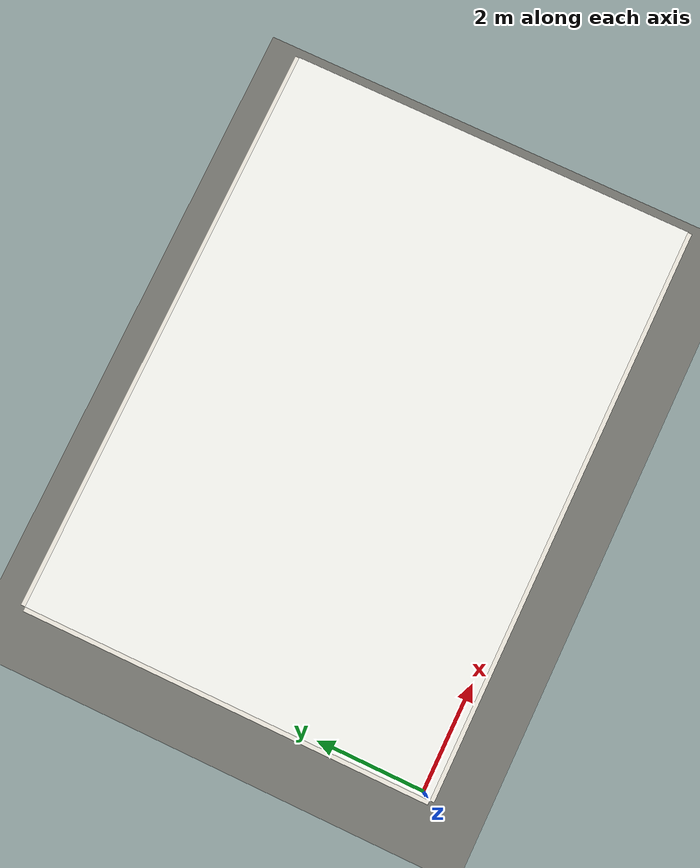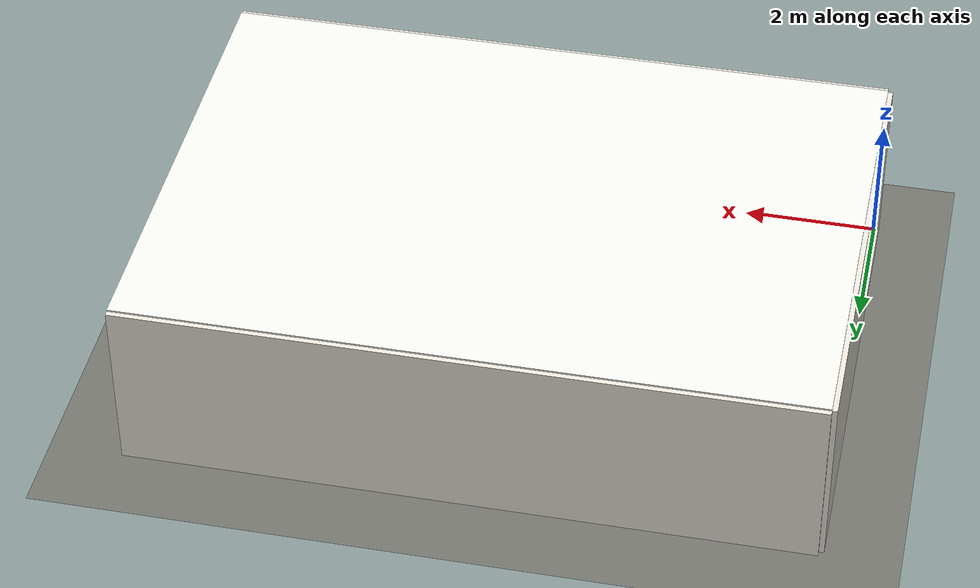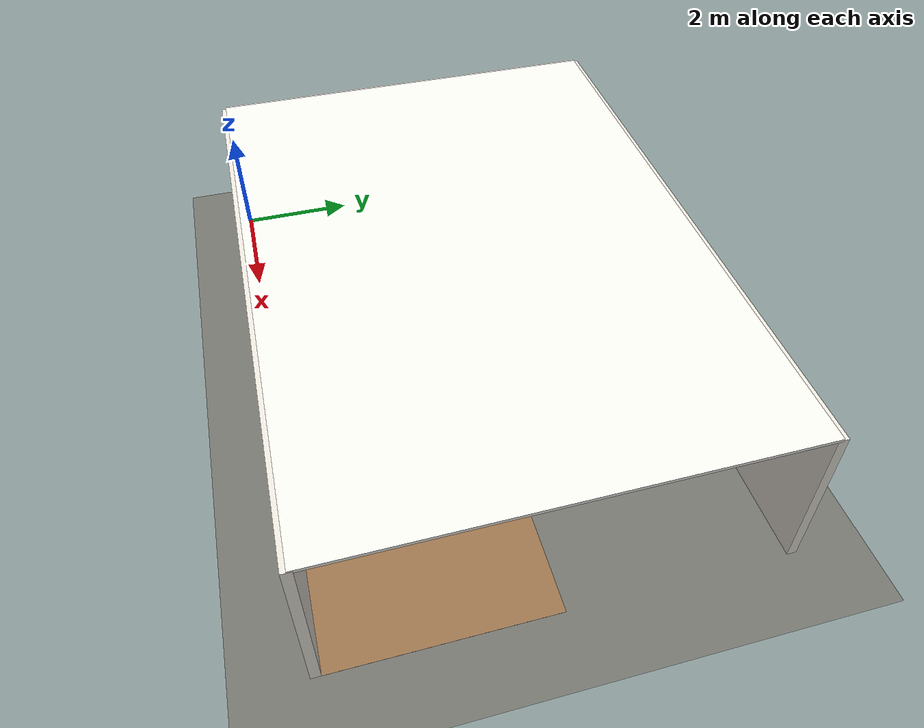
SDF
<?xml version="1.0"?>
<sdf version="1.9">
  <world name="apartment">

    <!--  PHYSICS                                                      -->
    <physics type="ode">
      <max_step_size>0.002</max_step_size>
      <real_time_factor>1.0</real_time_factor>
      <real_time_update_rate>500</real_time_update_rate>
    </physics>

    <!--  PLUGINS                                                      -->
    <plugin filename="gz-sim-physics-system"        name="gz::sim::systems::Physics"/>
    <plugin filename="gz-sim-scene-broadcaster-system" name="gz::sim::systems::SceneBroadcaster"/>
    <plugin filename="gz-sim-user-commands-system"  name="gz::sim::systems::UserCommands"/>
    <plugin filename="gz-sim-sensors-system"        name="gz::sim::systems::Sensors">
      <render_engine>ogre2</render_engine>
    </plugin>
    <plugin filename="gz-sim-imu-system"            name="gz::sim::systems::Imu"/>
    <plugin filename="gz-sim-altimeter-system"      name="gz::sim::systems::Altimeter"/>
    <plugin filename="gz-sim-contact-system"        name="gz::sim::systems::Contact"/>

    <!--  SCENE & LIGHTING                                             -->
    <scene>
      <ambient>0.45 0.45 0.45 1.0</ambient>
      <background>0.8 0.85 0.95 1.0</background>
      <shadows>true</shadows>
    </scene>

    <!-- Warm overhead light -->
    <light type="directional" name="sun_indirect">
      <pose>5 3.5 2.6 0 0 0</pose>
      <cast_shadows>true</cast_shadows>
      <diffuse>0.85 0.82 0.72 1</diffuse>
      <specular>0.2 0.2 0.2 1</specular>
      <attenuation>
        <range>20</range>
        <constant>0.3</constant>
        <linear>0.01</linear>
        <quadratic>0.002</quadratic>
      </attenuation>
      <direction>0.1 0.1 -1.0</direction>
    </light>

    <!-- Room lights -->
    <light type="point" name="living_room_light">
      <pose>7 1.75 2.4 0 0 0</pose>
      <cast_shadows>false</cast_shadows>
      <diffuse>0.95 0.9 0.75 1</diffuse>
      <attenuation><range>8</range><constant>0.3</constant><linear>0.08</linear><quadratic>0.02</quadratic></attenuation>
    </light>
    <light type="point" name="kitchen_light">
      <pose>2 1.75 2.4 0 0 0</pose>
      <cast_shadows>false</cast_shadows>
      <diffuse>0.95 0.92 0.82 1</diffuse>
      <attenuation><range>6</range><constant>0.3</constant><linear>0.1</linear><quadratic>0.03</quadratic></attenuation>
    </light>
    <light type="point" name="bedroom_light">
      <pose>2 5.25 2.4 0 0 0</pose>
      <cast_shadows>false</cast_shadows>
      <diffuse>0.9 0.85 0.7 1</diffuse>
      <attenuation><range>6</range><constant>0.3</constant><linear>0.1</linear><quadratic>0.03</quadratic></attenuation>
    </light>
    <light type="point" name="bathroom_light">
      <pose>5.5 5.25 2.4 0 0 0</pose>
      <cast_shadows>false</cast_shadows>
      <diffuse>0.95 0.95 0.95 1</diffuse>
      <attenuation><range>5</range><constant>0.3</constant><linear>0.12</linear><quadratic>0.04</quadratic></attenuation>
    </light>

    <!--  GROUND & FLOOR                                               -->
    <model name="ground_plane">
      <static>true</static>
      <link name="link">
        <collision name="collision">
          <geometry><plane><normal>0 0 1</normal><size>20 20</size></plane></geometry>
        </collision>
        <visual name="visual">
          <geometry><plane><normal>0 0 1</normal><size>20 20</size></plane></geometry>
          <material><ambient>0.4 0.4 0.38 1</ambient><diffuse>0.45 0.45 0.43 1</diffuse></material>
        </visual>
      </link>
    </model>

    <!-- Living room floor (hardwood) -->
    <model name="floor_living">
      <static>true</static>
      <pose>7 1.75 0.001 0 0 0</pose>
      <link name="link">
        <visual name="vis"><geometry><box><size>6 3.5 0.002</size></box></geometry>
          <material><ambient>0.55 0.40 0.25 1</ambient><diffuse>0.6 0.45 0.3 1</diffuse><specular>0.2 0.2 0.2 1</specular></material>
        </visual>
      </link>
    </model>
    <!-- Kitchen floor (tile) -->
    <model name="floor_kitchen">
      <static>true</static>
      <pose>2 1.75 0.001 0 0 0</pose>
      <link name="link">
        <visual name="vis"><geometry><box><size>4 3.5 0.002</size></box></geometry>
          <material><ambient>0.75 0.73 0.7 1</ambient><diffuse>0.8 0.78 0.75 1</diffuse><specular>0.3 0.3 0.3 1</specular></material>
        </visual>
      </link>
    </model>
    <!-- Bedroom floor (carpet) -->
    <model name="floor_bedroom">
      <static>true</static>
      <pose>2 5.25 0.001 0 0 0</pose>
      <link name="link">
        <visual name="vis"><geometry><box><size>4 3.5 0.002</size></box></geometry>
          <material><ambient>0.5 0.48 0.45 1</ambient><diffuse>0.55 0.53 0.5 1</diffuse></material>
        </visual>
      </link>
    </model>
    <!-- Bathroom floor (white tile) -->
    <model name="floor_bathroom">
      <static>true</static>
      <pose>5.5 5.25 0.001 0 0 0</pose>
      <link name="link">
        <visual name="vis"><geometry><box><size>3 3.5 0.002</size></box></geometry>
          <material><ambient>0.85 0.85 0.85 1</ambient><diffuse>0.9 0.9 0.9 1</diffuse><specular>0.35 0.35 0.35 1</specular></material>
        </visual>
      </link>
    </model>

    <!--  CEILING (2.7m)                                               -->
    <model name="ceiling">
      <static>true</static>
      <pose>5 3.5 2.7 0 0 0</pose>
      <link name="link">
        <collision name="col"><geometry><box><size>10 7 0.05</size></box></geometry></collision>
        <visual name="vis"><geometry><box><size>10 7 0.05</size></box></geometry>
          <material><ambient>0.92 0.92 0.9 1</ambient><diffuse>0.95 0.95 0.93 1</diffuse></material>
        </visual>
      </link>
    </model>

    <!--  EXTERIOR WALLS (10m x 7m, 2.7m high, 0.15m thick)           -->
    <model name="wall_south">
      <static>true</static><pose>5 0 1.35 0 0 0</pose>
      <link name="link">
        <collision name="col"><geometry><box><size>10 0.15 2.7</size></box></geometry></collision>
        <visual name="vis"><geometry><box><size>10 0.15 2.7</size></box></geometry>
          <material><ambient>0.88 0.86 0.82 1</ambient><diffuse>0.92 0.9 0.86 1</diffuse></material>
        </visual>
      </link>
    </model>
    <model name="wall_north">
      <static>true</static><pose>5 7 1.35 0 0 0</pose>
      <link name="link">
        <collision name="col"><geometry><box><size>10 0.15 2.7</size></box></geometry></collision>
        <visual name="vis"><geometry><box><size>10 0.15 2.7</size></box></geometry>
          <material><ambient>0.88 0.86 0.82 1</ambient><diffuse>0.92 0.9 0.86 1</diffuse></material>
        </visual>
      </link>
    </model>
    <model name="wall_west">
      <static>true</static><pose>0 3.5 1.35 0 0 0</pose>
      <link name="link">
        <collision name="col"><geometry><box><size>0.15 7 2.7</size></box></geometry></collision>
        <visual name="vis"><geometry><box><size>0.15 7 2.7</size></box></geometry>
          <material><ambient>0.88 0.86 0.82 1</ambient><diffuse>0.92 0.9 0.86 1</diffuse></material>
        </visual>
      </link>
    </model>
    <model name="wall_east">
      <static>true</static><pose>7 3.5 1.35 0 0 0</pose>
      <link name="link">
        <collision name="col"><geometry><box><size>0.15 7 2.7</size></box></geometry></collision>
        <visual name="vis"><geometry><box><size>0.15 7 2.7</size></box></geometry>
          <material><ambient>0.88 0.86 0.82 1</ambient><diffuse>0.92 0.9 0.86 1</diffuse></material>
        </visual>
      </link>
    </model>

    <!--  INTERIOR WALLS                                               -->

    <!-- Kitchen / Living room divider at x=4, y=0..3.5 (door at y=1.5..2.3) -->
    <model name="wall_kl_bottom">
      <static>true</static><pose>4 0.75 1.35 0 0 0</pose>
      <link name="link">
        <collision name="col"><geometry><box><size>0.12 1.5 2.7</size></box></geometry></collision>
        <visual name="vis"><geometry><box><size>0.12 1.5 2.7</size></box></geometry>
          <material><ambient>0.88 0.86 0.82 1</ambient><diffuse>0.92 0.9 0.86 1</diffuse></material>
        </visual>
      </link>
    </model>
    <model name="wall_kl_top">
      <static>true</static><pose>4 2.9 1.35 0 0 0</pose>
      <link name="link">
        <collision name="col"><geometry><box><size>0.12 1.2 2.7</size></box></geometry></collision>
        <visual name="vis"><geometry><box><size>0.12 1.2 2.7</size></box></geometry>
          <material><ambient>0.88 0.86 0.82 1</ambient><diffuse>0.92 0.9 0.86 1</diffuse></material>
        </visual>
      </link>
    </model>
    <model name="wall_kl_header">
      <static>true</static><pose>4 1.9 2.35 0 0 0</pose>
      <link name="link">
        <collision name="col"><geometry><box><size>0.12 0.8 0.7</size></box></geometry></collision>
        <visual name="vis"><geometry><box><size>0.12 0.8 0.7</size></box></geometry>
          <material><ambient>0.88 0.86 0.82 1</ambient><diffuse>0.92 0.9 0.86 1</diffuse></material>
        </visual>
      </link>
    </model>

    <!-- Horizontal wall at y=3.5 (separating lower/upper floors) -->
    <!-- Kitchen-to-Bedroom wall x=0..4 (door at x=1.5..2.3) -->
    <model name="wall_kb_left">
      <static>true</static><pose>0.75 3.5 1.35 0 0 0</pose>
      <link name="link">
        <collision name="col"><geometry><box><size>1.5 0.12 2.7</size></box></geometry></collision>
        <visual name="vis"><geometry><box><size>1.5 0.12 2.7</size></box></geometry>
          <material><ambient>0.88 0.86 0.82 1</ambient><diffuse>0.92 0.9 0.86 1</diffuse></material>
        </visual>
      </link>
    </model>
    <model name="wall_kb_right">
      <static>true</static><pose>3.15 3.5 1.35 0 0 0</pose>
      <link name="link">
        <collision name="col"><geometry><box><size>1.7 0.12 2.7</size></box></geometry></collision>
        <visual name="vis"><geometry><box><size>1.7 0.12 2.7</size></box></geometry>
          <material><ambient>0.88 0.86 0.82 1</ambient><diffuse>0.92 0.9 0.86 1</diffuse></material>
        </visual>
      </link>
    </model>
    <model name="wall_kb_header">
      <static>true</static><pose>1.9 3.5 2.35 0 0 0</pose>
      <link name="link">
        <collision name="col"><geometry><box><size>0.8 0.12 0.7</size></box></geometry></collision>
        <visual name="vis"><geometry><box><size>0.8 0.12 0.7</size></box></geometry>
          <material><ambient>0.88 0.86 0.82 1</ambient><diffuse>0.92 0.9 0.86 1</diffuse></material>
        </visual>
      </link>
    </model>

    <!-- Living-to-Bathroom/Bedroom corridor wall at y=3.5, x=4..7 (door at x=5..5.8) -->
    <model name="wall_lb_left">
      <static>true</static><pose>4.5 3.5 1.35 0 0 0</pose>
      <link name="link">
        <collision name="col"><geometry><box><size>1.0 0.12 2.7</size></box></geometry></collision>
        <visual name="vis"><geometry><box><size>1.0 0.12 2.7</size></box></geometry>
          <material><ambient>0.88 0.86 0.82 1</ambient><diffuse>0.92 0.9 0.86 1</diffuse></material>
        </visual>
      </link>
    </model>
    <model name="wall_lb_right">
      <static>true</static><pose>6.4 3.5 1.35 0 0 0</pose>
      <link name="link">
        <collision name="col"><geometry><box><size>1.2 0.12 2.7</size></box></geometry></collision>
        <visual name="vis"><geometry><box><size>1.2 0.12 2.7</size></box></geometry>
          <material><ambient>0.88 0.86 0.82 1</ambient><diffuse>0.92 0.9 0.86 1</diffuse></material>
        </visual>
      </link>
    </model>
    <model name="wall_lb_header">
      <static>true</static><pose>5.4 3.5 2.35 0 0 0</pose>
      <link name="link">
        <collision name="col"><geometry><box><size>0.8 0.12 0.7</size></box></geometry></collision>
        <visual name="vis"><geometry><box><size>0.8 0.12 0.7</size></box></geometry>
          <material><ambient>0.88 0.86 0.82 1</ambient><diffuse>0.92 0.9 0.86 1</diffuse></material>
        </visual>
      </link>
    </model>

    <!-- Bedroom / Bathroom divider at x=4, y=3.5..7 (door at y=4.5..5.3) -->
    <model name="wall_bb_bottom">
      <static>true</static><pose>4 4 1.35 0 0 0</pose>
      <link name="link">
        <collision name="col"><geometry><box><size>0.12 1.0 2.7</size></box></geometry></collision>
        <visual name="vis"><geometry><box><size>0.12 1.0 2.7</size></box></geometry>
          <material><ambient>0.88 0.86 0.82 1</ambient><diffuse>0.92 0.9 0.86 1</diffuse></material>
        </visual>
      </link>
    </model>
    <model name="wall_bb_top">
      <static>true</static><pose>4 6.15 1.35 0 0 0</pose>
      <link name="link">
        <collision name="col"><geometry><box><size>0.12 1.7 2.7</size></box></geometry></collision>
        <visual name="vis"><geometry><box><size>0.12 1.7 2.7</size></box></geometry>
          <material><ambient>0.88 0.86 0.82 1</ambient><diffuse>0.92 0.9 0.86 1</diffuse></material>
        </visual>
      </link>
    </model>
    <model name="wall_bb_header">
      <static>true</static><pose>4 4.9 2.35 0 0 0</pose>
      <link name="link">
        <collision name="col"><geometry><box><size>0.12 0.8 0.7</size></box></geometry></collision>
        <visual name="vis"><geometry><box><size>0.12 0.8 0.7</size></box></geometry>
          <material><ambient>0.88 0.86 0.82 1</ambient><diffuse>0.92 0.9 0.86 1</diffuse></material>
        </visual>
      </link>
    </model>

    <!--  LIVING ROOM FURNITURE                                        -->
    <!-- Sofa -->
    <model name="sofa">
      <static>true</static>
      <pose>6.5 0.5 0.25 0 0 0</pose>
      <link name="link">
        <collision name="col"><geometry><box><size>1.8 0.8 0.5</size></box></geometry></collision>
        <visual name="vis_seat"><geometry><box><size>1.8 0.8 0.35</size></box></geometry>
          <material><ambient>0.35 0.3 0.45 1</ambient><diffuse>0.4 0.35 0.5 1</diffuse></material>
        </visual>
        <visual name="vis_back"><pose>0 -0.35 0.25 0 0 0</pose><geometry><box><size>1.8 0.1 0.5</size></box></geometry>
          <material><ambient>0.35 0.3 0.45 1</ambient><diffuse>0.4 0.35 0.5 1</diffuse></material>
        </visual>
      </link>
    </model>

    <!-- Coffee table -->
    <model name="coffee_table">
      <static>true</static>
      <pose>6.5 1.5 0.2 0 0 0</pose>
      <link name="link">
        <collision name="col"><geometry><box><size>0.9 0.5 0.4</size></box></geometry></collision>
        <visual name="vis"><geometry><box><size>0.9 0.5 0.4</size></box></geometry>
          <material><ambient>0.4 0.3 0.18 1</ambient><diffuse>0.45 0.35 0.22 1</diffuse></material>
        </visual>
      </link>
    </model>

    <!-- TV stand + TV -->
    <model name="tv_stand">
      <static>true</static>
      <pose>6.5 3.1 0.25 0 0 0</pose>
      <link name="link">
        <collision name="col"><geometry><box><size>1.2 0.4 0.5</size></box></geometry></collision>
        <visual name="vis_stand"><geometry><box><size>1.2 0.4 0.5</size></box></geometry>
          <material><ambient>0.2 0.2 0.2 1</ambient><diffuse>0.25 0.25 0.25 1</diffuse></material>
        </visual>
        <visual name="vis_tv"><pose>0 0 0.5 0 0 0</pose><geometry><box><size>1.0 0.05 0.6</size></box></geometry>
          <material><ambient>0.05 0.05 0.05 1</ambient><diffuse>0.1 0.1 0.1 1</diffuse></material>
        </visual>
      </link>
    </model>

    <!-- Bookshelf -->
    <model name="bookshelf_living">
      <static>true</static>
      <pose>4.3 1.75 0.8 0 0 0</pose>
      <link name="link">
        <collision name="col"><geometry><box><size>0.3 1.0 1.6</size></box></geometry></collision>
        <visual name="vis"><geometry><box><size>0.3 1.0 1.6</size></box></geometry>
          <material><ambient>0.5 0.38 0.22 1</ambient><diffuse>0.55 0.42 0.27 1</diffuse></material>
        </visual>
      </link>
    </model>

    <!--  KITCHEN FURNITURE                                            -->
    <!-- Kitchen counter along west wall -->
    <model name="kitchen_counter">
      <static>true</static>
      <pose>0.35 1.75 0.45 0 0 0</pose>
      <link name="link">
        <collision name="col"><geometry><box><size>0.55 2.5 0.9</size></box></geometry></collision>
        <visual name="vis"><geometry><box><size>0.55 2.5 0.9</size></box></geometry>
          <material><ambient>0.8 0.8 0.78 1</ambient><diffuse>0.85 0.85 0.83 1</diffuse><specular>0.2 0.2 0.2 1</specular></material>
        </visual>
      </link>
    </model>

    <!-- Refrigerator -->
    <model name="fridge">
      <static>true</static>
      <pose>0.35 3.1 0.85 0 0 0</pose>
      <link name="link">
        <collision name="col"><geometry><box><size>0.6 0.6 1.7</size></box></geometry></collision>
        <visual name="vis"><geometry><box><size>0.6 0.6 1.7</size></box></geometry>
          <material><ambient>0.7 0.7 0.7 1</ambient><diffuse>0.75 0.75 0.75 1</diffuse><specular>0.3 0.3 0.3 1</specular></material>
        </visual>
      </link>
    </model>

    <!-- Small dining table -->
    <model name="dining_table">
      <static>true</static>
      <pose>2.5 1.2 0.37 0 0 0</pose>
      <link name="link">
        <collision name="col"><geometry><box><size>0.8 0.8 0.74</size></box></geometry></collision>
        <visual name="vis"><geometry><box><size>0.8 0.8 0.74</size></box></geometry>
          <material><ambient>0.5 0.4 0.25 1</ambient><diffuse>0.55 0.45 0.3 1</diffuse></material>
        </visual>
      </link>
    </model>
    <model name="dining_chair_1">
      <static>true</static><pose>2.1 0.7 0.22 0 0 0</pose>
      <link name="link">
        <collision name="col"><geometry><box><size>0.4 0.4 0.44</size></box></geometry></collision>
        <visual name="vis"><geometry><box><size>0.4 0.4 0.44</size></box></geometry>
          <material><ambient>0.5 0.4 0.25 1</ambient><diffuse>0.55 0.45 0.3 1</diffuse></material>
        </visual>
      </link>
    </model>
    <model name="dining_chair_2">
      <static>true</static><pose>2.9 0.7 0.22 0 0 0</pose>
      <link name="link">
        <collision name="col"><geometry><box><size>0.4 0.4 0.44</size></box></geometry></collision>
        <visual name="vis"><geometry><box><size>0.4 0.4 0.44</size></box></geometry>
          <material><ambient>0.5 0.4 0.25 1</ambient><diffuse>0.55 0.45 0.3 1</diffuse></material>
        </visual>
      </link>
    </model>

    <!--  BEDROOM FURNITURE                                            -->
    <!-- Bed -->
    <model name="bed">
      <static>true</static>
      <pose>1.5 5.5 0.3 0 0 0</pose>
      <link name="link">
        <collision name="col"><geometry><box><size>1.6 2.0 0.6</size></box></geometry></collision>
        <visual name="vis_frame"><pose>0 0 -0.15 0 0 0</pose><geometry><box><size>1.6 2.0 0.3</size></box></geometry>
          <material><ambient>0.45 0.35 0.2 1</ambient><diffuse>0.5 0.4 0.25 1</diffuse></material>
        </visual>
        <visual name="vis_mattress"><pose>0 0 0.05 0 0 0</pose><geometry><box><size>1.5 1.9 0.2</size></box></geometry>
          <material><ambient>0.85 0.85 0.82 1</ambient><diffuse>0.9 0.9 0.87 1</diffuse></material>
        </visual>
        <visual name="vis_pillow"><pose>0 -0.75 0.2 0 0 0</pose><geometry><box><size>0.5 0.35 0.1</size></box></geometry>
          <material><ambient>0.9 0.9 0.88 1</ambient><diffuse>0.95 0.95 0.93 1</diffuse></material>
        </visual>
      </link>
    </model>

    <!-- Nightstand -->
    <model name="nightstand">
      <static>true</static>
      <pose>2.8 4.8 0.25 0 0 0</pose>
      <link name="link">
        <collision name="col"><geometry><box><size>0.4 0.35 0.5</size></box></geometry></collision>
        <visual name="vis"><geometry><box><size>0.4 0.35 0.5</size></box></geometry>
          <material><ambient>0.45 0.35 0.2 1</ambient><diffuse>0.5 0.4 0.25 1</diffuse></material>
        </visual>
      </link>
    </model>

    <!-- Wardrobe -->
    <model name="wardrobe">
      <static>true</static>
      <pose>0.4 5.5 0.95 0 0 0</pose>
      <link name="link">
        <collision name="col"><geometry><box><size>0.6 1.2 1.9</size></box></geometry></collision>
        <visual name="vis"><geometry><box><size>0.6 1.2 1.9</size></box></geometry>
          <material><ambient>0.5 0.42 0.3 1</ambient><diffuse>0.55 0.47 0.35 1</diffuse></material>
        </visual>
      </link>
    </model>

    <!--  BATHROOM FURNITURE                                           -->
    <!-- Bathtub -->
    <model name="bathtub">
      <static>true</static>
      <pose>5.5 6.2 0.3 0 0 0</pose>
      <link name="link">
        <collision name="col"><geometry><box><size>0.7 1.5 0.6</size></box></geometry></collision>
        <visual name="vis"><geometry><box><size>0.7 1.5 0.6</size></box></geometry>
          <material><ambient>0.9 0.9 0.9 1</ambient><diffuse>0.95 0.95 0.95 1</diffuse><specular>0.4 0.4 0.4 1</specular></material>
        </visual>
      </link>
    </model>

    <!-- Sink vanity -->
    <model name="bathroom_vanity">
      <static>true</static>
      <pose>6.6 4.2 0.4 0 0 0</pose>
      <link name="link">
        <collision name="col"><geometry><box><size>0.5 0.6 0.8</size></box></geometry></collision>
        <visual name="vis"><geometry><box><size>0.5 0.6 0.8</size></box></geometry>
          <material><ambient>0.85 0.85 0.85 1</ambient><diffuse>0.9 0.9 0.9 1</diffuse><specular>0.3 0.3 0.3 1</specular></material>
        </visual>
      </link>
    </model>

    <!-- Toilet -->
    <model name="toilet">
      <static>true</static>
      <pose>4.5 4.2 0.22 0 0 0</pose>
      <link name="link">
        <collision name="col"><geometry><box><size>0.4 0.6 0.44</size></box></geometry></collision>
        <visual name="vis_bowl"><geometry><box><size>0.38 0.55 0.4</size></box></geometry>
          <material><ambient>0.9 0.9 0.9 1</ambient><diffuse>0.95 0.95 0.95 1</diffuse><specular>0.35 0.35 0.35 1</specular></material>
        </visual>
        <visual name="vis_tank"><pose>0 -0.25 0.2 0 0 0</pose><geometry><box><size>0.35 0.15 0.4</size></box></geometry>
          <material><ambient>0.9 0.9 0.9 1</ambient><diffuse>0.95 0.95 0.95 1</diffuse></material>
        </visual>
      </link>
    </model>

    <!-- Bathroom mirror (wall mounted) -->
    <model name="bathroom_mirror">
      <static>true</static>
      <pose>6.85 4.2 1.4 0 0 0</pose>
      <link name="link">
        <visual name="vis"><geometry><box><size>0.02 0.5 0.6</size></box></geometry>
          <material><ambient>0.7 0.8 0.85 1</ambient><diffuse>0.8 0.88 0.92 1</diffuse><specular>0.6 0.6 0.6 1</specular></material>
        </visual>
      </link>
    </model>

    <!--  MISCELLANEOUS OBSTACLES                                      -->
    <!-- Potted plant in living room -->
    <model name="plant_living">
      <static>true</static>
      <pose>4.5 0.4 0.3 0 0 0</pose>
      <link name="link">
        <collision name="col"><geometry><cylinder><radius>0.15</radius><length>0.6</length></cylinder></geometry></collision>
        <visual name="vis_pot"><pose>0 0 -0.12 0 0 0</pose>
          <geometry><cylinder><radius>0.13</radius><length>0.22</length></cylinder></geometry>
          <material><ambient>0.5 0.3 0.15 1</ambient><diffuse>0.55 0.35 0.2 1</diffuse></material>
        </visual>
        <visual name="vis_plant"><pose>0 0 0.1 0 0 0</pose>
          <geometry><sphere><radius>0.2</radius></sphere></geometry>
          <material><ambient>0.15 0.45 0.15 1</ambient><diffuse>0.2 0.55 0.2 1</diffuse></material>
        </visual>
      </link>
    </model>

    <!-- Floor lamp -->
    <model name="floor_lamp">
      <static>true</static>
      <pose>5.4 0.4 0.75 0 0 0</pose>
      <link name="link">
        <collision name="col"><geometry><cylinder><radius>0.04</radius><length>1.5</length></cylinder></geometry></collision>
        <visual name="vis_pole"><geometry><cylinder><radius>0.02</radius><length>1.5</length></cylinder></geometry>
          <material><ambient>0.3 0.3 0.3 1</ambient><diffuse>0.35 0.35 0.35 1</diffuse></material>
        </visual>
        <visual name="vis_shade"><pose>0 0 0.7 0 0 0</pose>
          <geometry><cylinder><radius>0.15</radius><length>0.2</length></cylinder></geometry>
          <material><ambient>0.8 0.75 0.65 1</ambient><diffuse>0.85 0.8 0.7 1</diffuse></material>
        </visual>
      </link>
    </model>

  </world>
</sdf>
